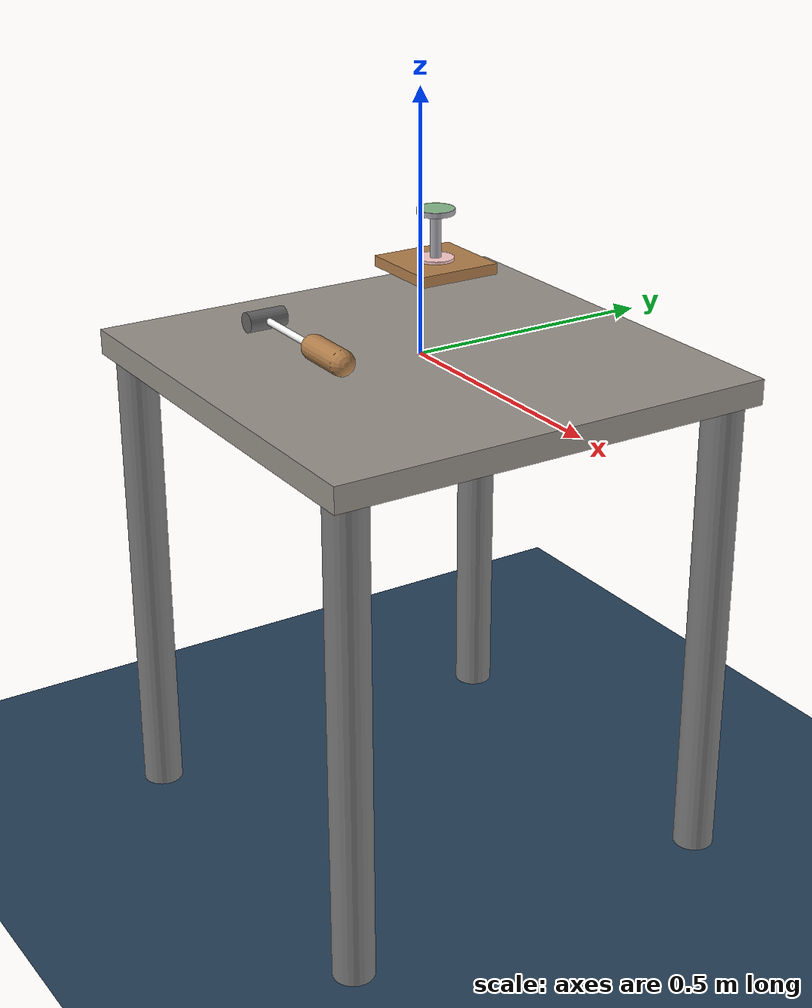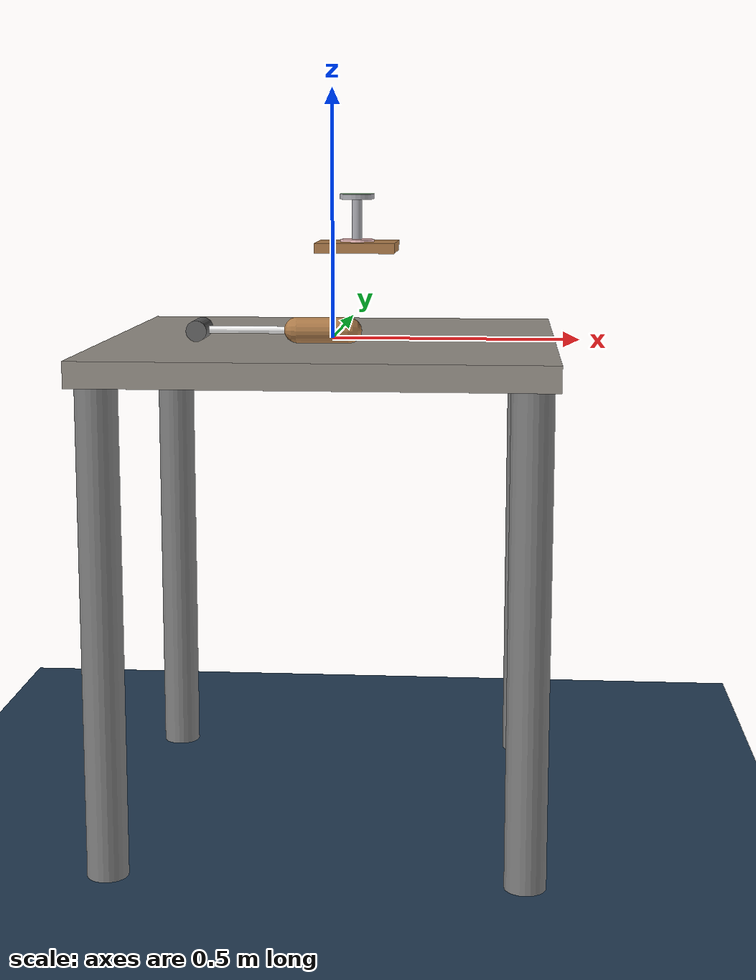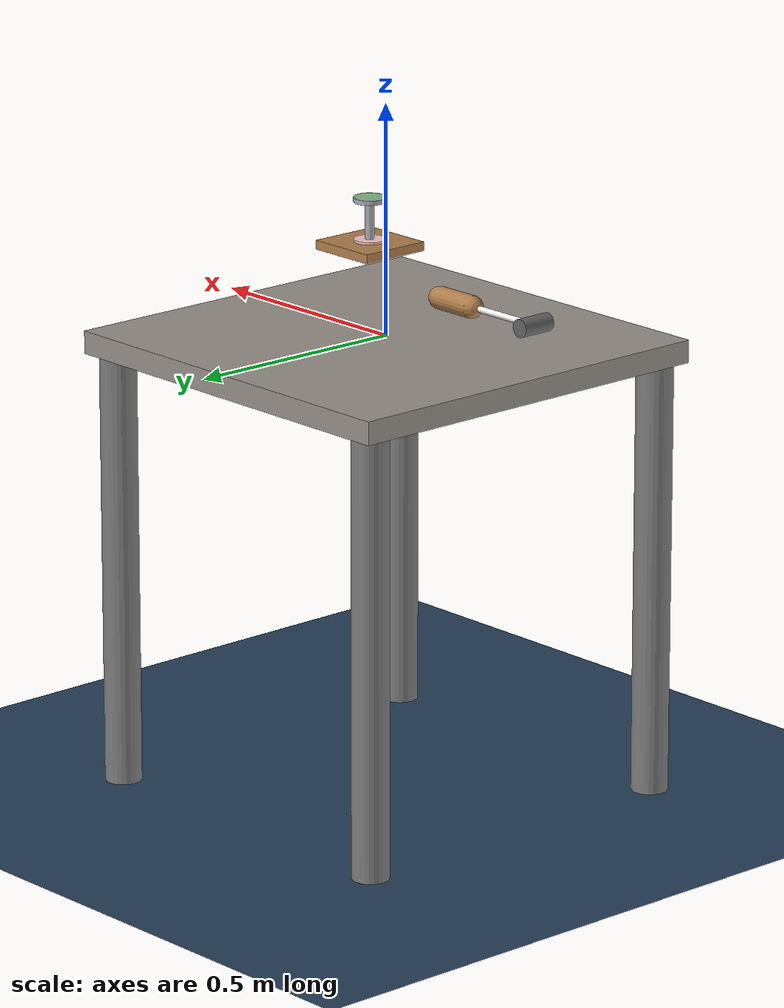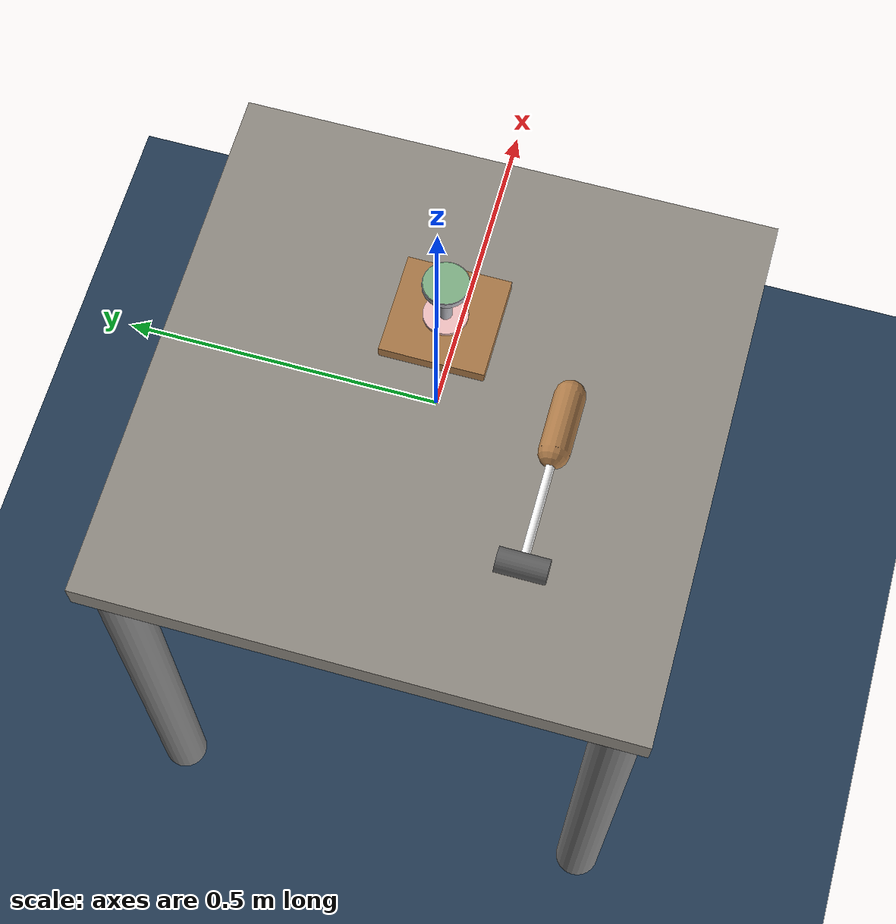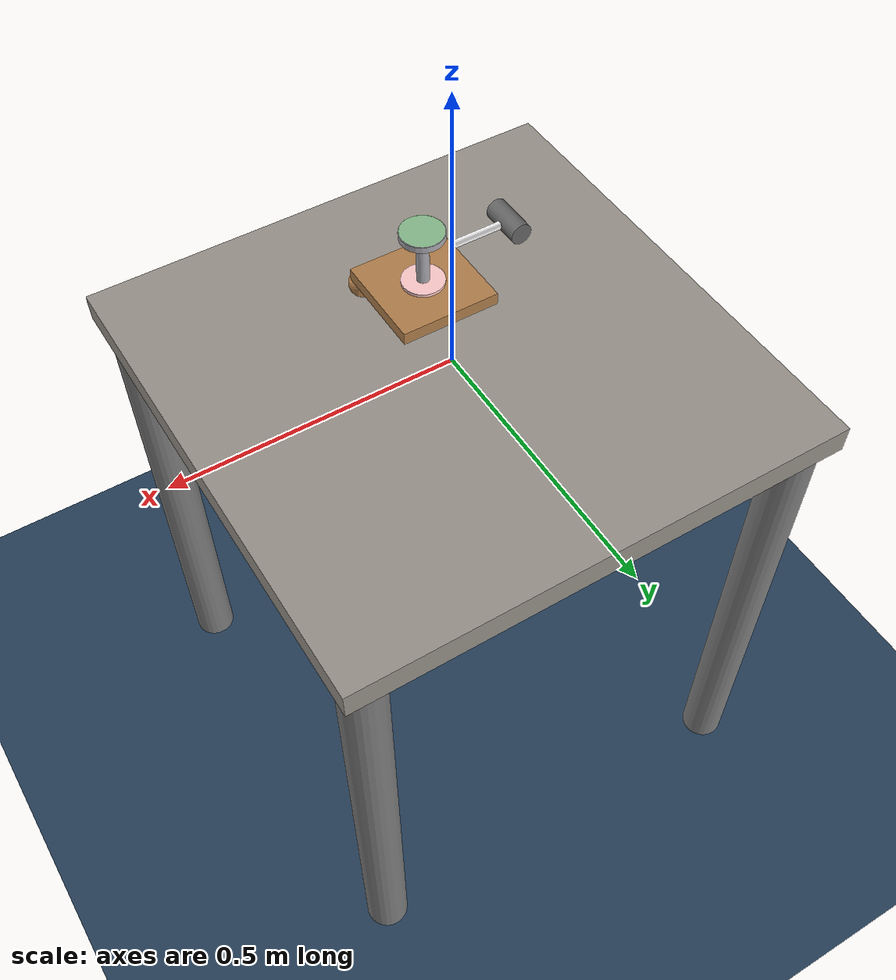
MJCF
<mujoco model='h1-hammer'>

    <!-- default -->
    <default>
        <default class="board">
            <geom type="box" material="MatWood" />
            <general
                user="0 1 0.03 0.0939711 0.513477 0.0358776 1.23598 8.40409 0.485031 6.04244 1.02187 0.175297 0.121642 0 0 0" />
        </default>
    </default>

    <!-- ======= CONTACTS ======= -->
    <contact>
        <exclude body1='nail_board' body2='nail_body' />
    </contact>

    <!-- ======= SENSORS ======= -->
    <sensor>
        <touch site="S_target" name="S_nail" />
    </sensor>

    <!-- asset -->
    <asset>
        <texture type="cube" name="wood" file="./resources/wood.png" />
        <texture type="cube" name="foil" file="./resources/silverRaw.png" />
        <texture type="2d" name="groundplane" builtin="checker" rgb1="0.2 0.3 0.4"
            rgb2="0.1 0.2 0.3" width="100" height="100" />
        <texture type="cube" name="marblecube" file="./resources/marble.png" />
        <material name="groundplane" texture="groundplane" texrepeat="10 10" />
        <material name="tablecube" texture="marblecube" rgba="0.8 0.8 0.8 1" />
        <material name="MatFoil" texture="foil" specular="1" shininess="0.3" rgba="0.9 0.9 0.9 1" />
        <material name="MatWood" texture="wood" texrepeat="3 3" specular="0.4" shininess="0.1" />
    </asset>

    <!-- ======= WORLD ======= -->
    <worldbody>
        <light directional='false' diffuse='.7 .7 .7' specular='0.03 0.03 0.03' pos='-1 -1.0 4.0'
            dir='1 1.0 -4' />
        <geom name='ground' size="1.5 1.5 0.25" pos="0 0 -1" type="plane" contype="1"
            conaffinity="0" material="groundplane" />
        <camera name="fixed" pos="0 -0.7 0.7" quat="0.92388 0.382683 0 0" />
        <!-- Camera for the VIL paper -->
        <camera name="vil_camera" pos="0 -1.2 1.2" quat="0.92388 0.382683 0 0" />

        <!-- ======= TABLE ======= -->
        <body name="table">
            <!-- Plane has better contacts -->
            <geom size="0.45 0.45 0.025" pos="0 0 -0.025" type="box" material="tablecube" />
            <geom size="0.04 0.5" pos="0.4 0.4 -0.501" quat="0 1 0 0" type="cylinder" contype="0"
                conaffinity="0" />
            <geom size="0.04 0.5" pos="-0.4 0.4 -0.501" quat="0 1 0 0" type="cylinder" contype="0"
                conaffinity="0" />
            <geom size="0.04 0.5" pos="0.4 -0.4 -0.501" quat="0 1 0 0" type="cylinder" contype="0"
                conaffinity="0" />
            <geom size="0.04 0.5" pos="-0.4 -0.4 -0.501" quat="0 1 0 0" type="cylinder" contype="0"
                conaffinity="0" />
        </body>

        <!-- ======= Nail ======= -->
        <!-- quat: 0.583833 0.583368 -0.399421 -0.399104 -->
        <body name="nail_board" pos="0.05 0 0.185245" quat="1 0 0 0"
            user="1001 0 2002 0.05 0 0.1 0.05 0 0.25">
            <inertial pos="0 0 0" mass="0.512" diaginertia="0.00110933 0.00110933 0.00218453" />
            <geom name="board" class="board" size="0.08 0.08 0.01" />
            <site name="nail_goal" pos="0 0 0.01" size="0.034 0.005" type="cylinder"
                material="MatWood" rgba="1 0.8 0.8 1" />
            <body name="nail_head" pos="0 0 0">
                <inertial pos="0 0 0.0775281" mass="0.0699004"
                    diaginertia="8.23129e-05 8.23129e-05 2.51426e-05" />
                <joint name="nail_rot_x" pos="0 0 0" axis="1 0 0" type="hinge" frictionloss="50" />
                <joint name="nail_rot_y" pos="0 0 0" axis="0 1 0" type="hinge" frictionloss="50" />
                <joint name="nail_dir_z" pos="0 0 0" axis="0 0 -1" type="slide" damping="10"
                    frictionloss="50" />
                <joint name="nail_dir_x" pos="0 0 0" axis="1 0 0" type="slide" damping="10"
                    frictionloss="50" />
                <joint name="nail_dir_y" pos="0 0 0" axis="0 1 0" type="slide" damping="10"
                    frictionloss="50" />
                <geom size="0.035 0.005" pos="0 0 0.1" type="cylinder" material="MatFoil" />
                <site name="S_target" pos="0 0 0.101" size="0.034 0.005" type="cylinder"
                    rgba="0 1 0 0.2" />
                <body name="nail_body" pos="0 0 0">
                    <geom size="0.01 0.05" pos="0 0 0.05" type="cylinder" material="MatFoil" />
                </body>
            </body>
        </body>

        <!-- ======= Hammer ======= -->
        <body name="Object" pos="0 -0.2 0.035" quat="0.707388 0.706825 0 0">
            <inertial pos="-0.11025 0 0" quat="0.50001 0.49999 0.49999 0.50001" mass="0.253442"
                diaginertia="0.00349644 0.00345287 8.947e-05" />
            <joint name="OBJTx" pos="0 0 0" axis="1 0 0" type="slide" limited="false" damping="0" />
            <joint name="OBJTy" pos="0 0 0" axis="0 1 0" type="slide" limited="false" damping="0" />
            <joint name="OBJTz" pos="0 0 0" axis="0 0 1" type="slide" limited="false" damping="0" />
            <joint name="OBJRx" pos="0 0 0" axis="1 0 0" limited="false" damping="0.1" />
            <joint name="OBJRy" pos="0 0 0" axis="0 1 0" limited="false" damping="0.1" />
            <joint name="OBJRz" pos="0 0 0" axis="0 0 1" limited="false" damping="0.1" />
            <geom name="handle" size="0.025 0.05" quat="0.707388 0 0.706825 0" type="capsule"
                condim="4" material="MatWood" />
            <geom name="neck" size="0.007 0.085" pos="-0.14 0 0" quat="0.707388 0 0.706825 0"
                type="capsule" condim="4" rgba="1 1 1 1" />
            <geom name="head" size="0.02 0.04" pos="-0.24 0 0" type="cylinder" condim="4"
                rgba="0.4 0.4 0.4 1" />
            <site name="tool" pos="-0.2 0 -0.04" size="0.01" group="4" rgba="0.4 0.8 0.4 1" />
        </body>

    </worldbody>

    <actuator>

    </actuator>

    <sensor>

    </sensor>

</mujoco>
